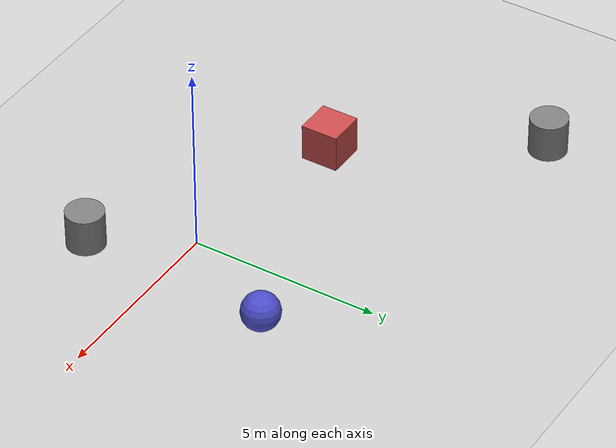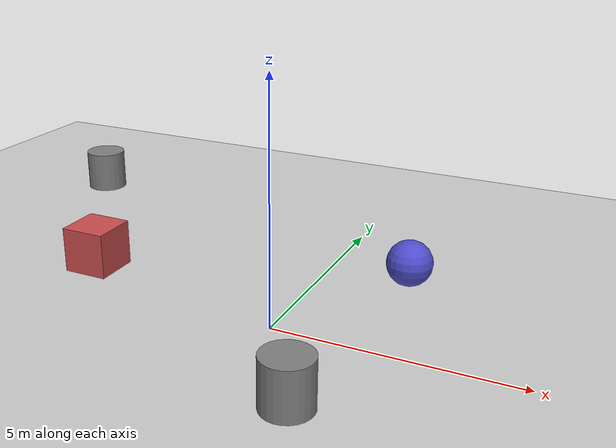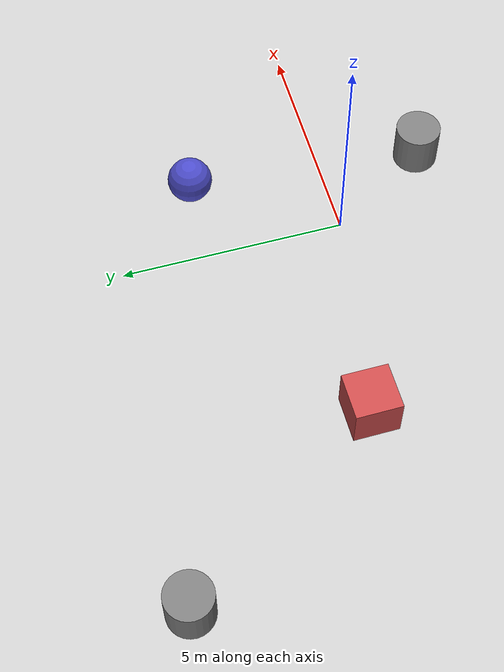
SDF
<?xml version="1.0" ?>
<!-- Gazebo Ignition (Gazebo Sim) compatible world file -->
<!-- System plugins removed - Ignition loads them automatically -->
<sdf version='1.8'>
  <world name='default'>
    <!-- Global RGL scene manager required to upload meshes to GPU -->
    <plugin name='rgl::RGLServerPluginManager' filename='RGLServerPluginManager'>
      <do_ignore_entities_in_lidar_link>true</do_ignore_entities_in_lidar_link>
    </plugin>

    <!-- Gazebo Ignition system plugins -->
    <plugin name='gz::sim::systems::Physics' filename='ignition-gazebo-physics-system'/>
    <plugin name='gz::sim::systems::UserCommands' filename='ignition-gazebo-user-commands-system'/>
    <plugin name='gz::sim::systems::SceneBroadcaster' filename='ignition-gazebo-scene-broadcaster-system'/>
    <plugin name='gz::sim::systems::Contact' filename='ignition-gazebo-contact-system'/>

    <!-- Lighting -->
    <light name='sun' type='directional'>
      <cast_shadows>true</cast_shadows>
      <pose>0 0 10 0 0 0</pose>
      <diffuse>0.8 0.8 0.8 1</diffuse>
      <specular>0.2 0.2 0.2 1</specular>
      <attenuation>
        <range>1000</range>
        <constant>0.9</constant>
        <linear>0.01</linear>
        <quadratic>0.001</quadratic>
      </attenuation>
      <direction>-0.5 0.1 -0.9</direction>
    </light>

    <!-- Ground plane -->
    <model name='ground_plane'>
      <static>true</static>
      <link name='link'>
        <collision name='collision'>
          <geometry>
            <plane>
              <normal>0 0 1</normal>
              <size>100 100</size>
            </plane>
          </geometry>
          <surface>
            <friction>
              <ode>
                <mu>100</mu>
                <mu2>50</mu2>
              </ode>
            </friction>
          </surface>
        </collision>
        <visual name='visual'>
          <cast_shadows>false</cast_shadows>
          <geometry>
            <plane>
              <normal>0 0 1</normal>
              <size>100 100</size>
            </plane>
          </geometry>
          <material>
            <ambient>0.8 0.8 0.8 1</ambient>
            <diffuse>0.8 0.8 0.8 1</diffuse>
            <specular>0.8 0.8 0.8 1</specular>
          </material>
        </visual>
      </link>
    </model>

    <!-- Physics settings -->
    <gravity>0 0 -9.8</gravity>
    <magnetic_field>6e-06 2.3e-05 -4.2e-05</magnetic_field>
    <atmosphere type='adiabatic'/>

    <physics name='default_physics' type='ignored'>
      <max_step_size>0.001</max_step_size>
      <real_time_factor>1</real_time_factor>
      <real_time_update_rate>1000</real_time_update_rate>
    </physics>

    <scene>
      <ambient>0.4 0.4 0.4 1</ambient>
      <background>0.7 0.7 0.7 1</background>
      <shadows>true</shadows>
    </scene>

    <!-- Test objects -->
    <model name='unit_cylinder'>
      <pose>1.43518 -2.27553 0.5 0 0 0</pose>
      <static>false</static>
      <link name='link'>
        <inertial>
          <mass>1</mass>
          <inertia>
            <ixx>0.145833</ixx>
            <ixy>0</ixy>
            <ixz>0</ixz>
            <iyy>0.145833</iyy>
            <iyz>0</iyz>
            <izz>0.125</izz>
          </inertia>
        </inertial>
        <collision name='collision'>
          <geometry>
            <cylinder>
              <radius>0.5</radius>
              <length>1</length>
            </cylinder>
          </geometry>
        </collision>
        <visual name='visual'>
          <geometry>
            <cylinder>
              <radius>0.5</radius>
              <length>1</length>
            </cylinder>
          </geometry>
          <material>
            <ambient>0.5 0.5 0.5 1</ambient>
            <diffuse>0.5 0.5 0.5 1</diffuse>
            <specular>0.5 0.5 0.5 1</specular>
          </material>
        </visual>
      </link>
    </model>

    <model name='unit_sphere'>
      <pose>1.80379 3.01738 0.5 0 0 0</pose>
      <static>false</static>
      <link name='link'>
        <inertial>
          <mass>1</mass>
          <inertia>
            <ixx>0.1</ixx>
            <ixy>0</ixy>
            <ixz>0</ixz>
            <iyy>0.1</iyy>
            <iyz>0</iyz>
            <izz>0.1</izz>
          </inertia>
        </inertial>
        <collision name='collision'>
          <geometry>
            <sphere>
              <radius>0.5</radius>
            </sphere>
          </geometry>
        </collision>
        <visual name='visual'>
          <geometry>
            <sphere>
              <radius>0.5</radius>
            </sphere>
          </geometry>
          <material>
            <ambient>0.3 0.3 0.8 1</ambient>
            <diffuse>0.3 0.3 0.8 1</diffuse>
            <specular>0.3 0.3 0.8 1</specular>
          </material>
        </visual>
      </link>
    </model>

    <model name='unit_cylinder_0'>
      <pose>-7.76412 5.41801 0.5 0 0 0</pose>
      <static>false</static>
      <link name='link'>
        <inertial>
          <mass>1</mass>
          <inertia>
            <ixx>0.145833</ixx>
            <ixy>0</ixy>
            <ixz>0</ixz>
            <iyy>0.145833</iyy>
            <iyz>0</iyz>
            <izz>0.125</izz>
          </inertia>
        </inertial>
        <collision name='collision'>
          <geometry>
            <cylinder>
              <radius>0.5</radius>
              <length>1</length>
            </cylinder>
          </geometry>
        </collision>
        <visual name='visual'>
          <geometry>
            <cylinder>
              <radius>0.5</radius>
              <length>1</length>
            </cylinder>
          </geometry>
          <material>
            <ambient>0.5 0.5 0.5 1</ambient>
            <diffuse>0.5 0.5 0.5 1</diffuse>
            <specular>0.5 0.5 0.5 1</specular>
          </material>
        </visual>
      </link>
    </model>

    <model name='unit_box'>
      <pose>-4.68877 0.869119 0.5 0 0 0</pose>
      <static>false</static>
      <link name='link'>
        <inertial>
          <mass>1</mass>
          <inertia>
            <ixx>0.166667</ixx>
            <ixy>0</ixy>
            <ixz>0</ixz>
            <iyy>0.166667</iyy>
            <iyz>0</iyz>
            <izz>0.166667</izz>
          </inertia>
        </inertial>
        <collision name='collision'>
          <geometry>
            <box>
              <size>1 1 1</size>
            </box>
          </geometry>
        </collision>
        <visual name='visual'>
          <geometry>
            <box>
              <size>1 1 1</size>
            </box>
          </geometry>
          <material>
            <ambient>0.8 0.3 0.3 1</ambient>
            <diffuse>0.8 0.3 0.3 1</diffuse>
            <specular>0.8 0.3 0.3 1</specular>
          </material>
        </visual>
      </link>
    </model>

  </world>
</sdf>
